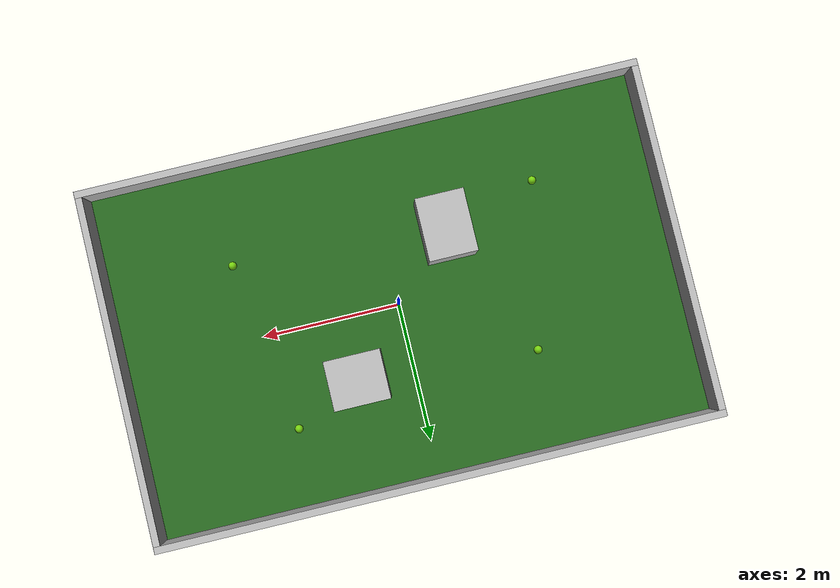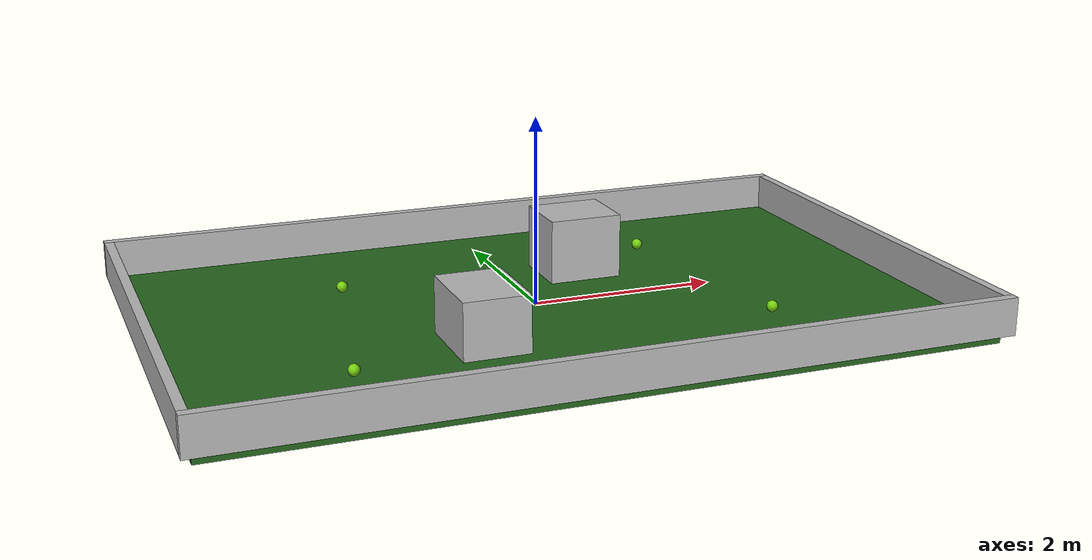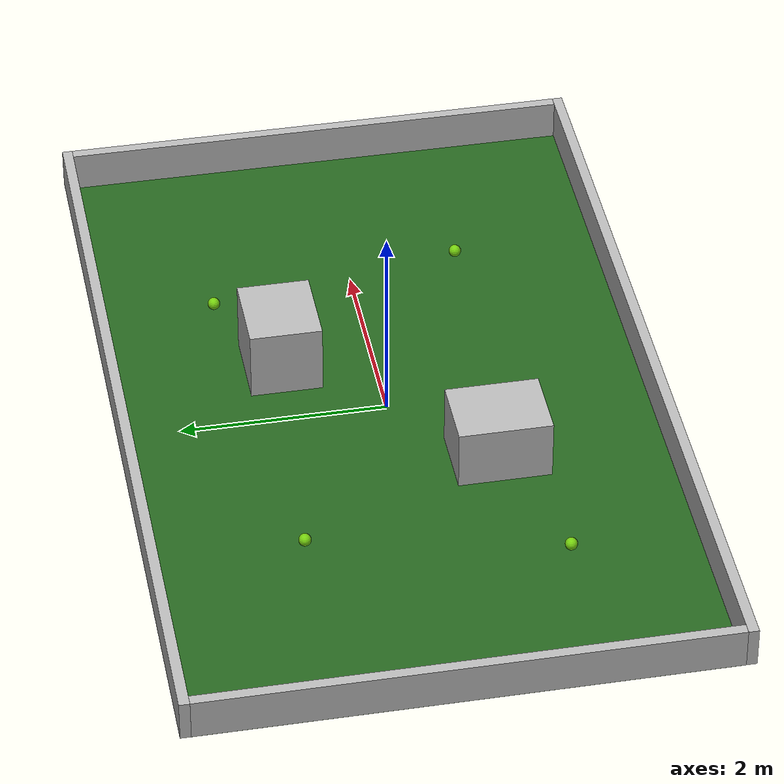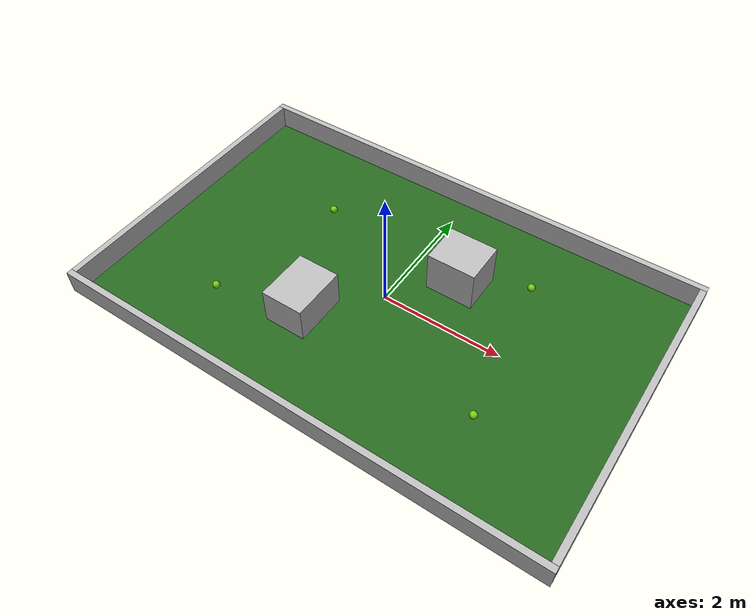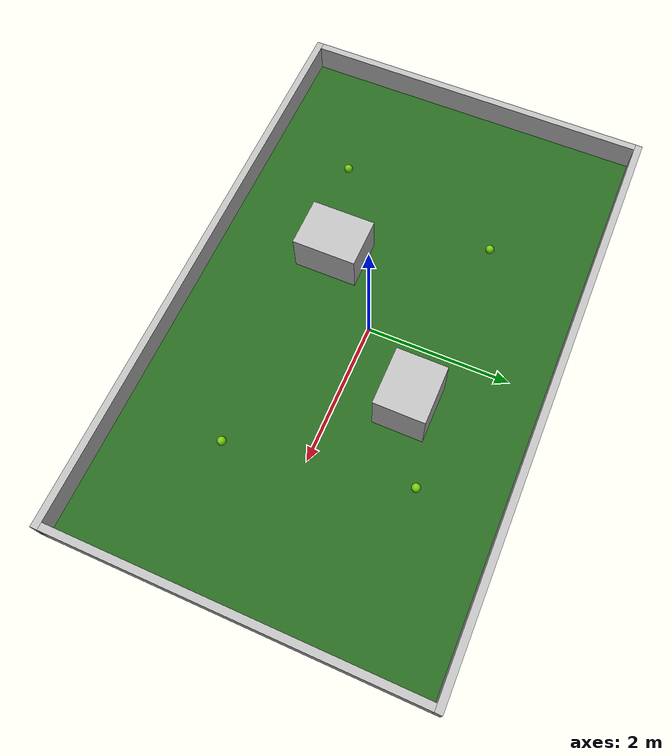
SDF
<?xml version="1.0"?>
<sdf version="1.7">
  <world name="tennis_court">

    <gravity>0 0 -9.81</gravity>

    <physics name="default_physics" type="ode">
      <max_step_size>0.001</max_step_size>
      <real_time_factor>1.0</real_time_factor>
      <real_time_update_rate>1000</real_time_update_rate>
    </physics>

    <plugin filename="gz-sim-physics-system" name="gz::sim::systems::Physics"/>
    <plugin filename="gz-sim-user-commands-system" name="gz::sim::systems::UserCommands"/>
    <plugin filename="gz-sim-scene-broadcaster-system" name="gz::sim::systems::SceneBroadcaster"/>
    <plugin filename="gz-sim-sensors-system" name="gz::sim::systems::Sensors">
      <render_engine>ogre2</render_engine>
    </plugin>

    <light type="directional" name="sun">
      <cast_shadows>true</cast_shadows>
      <pose>0 0 8 0 0 0</pose>
      <diffuse>0.8 0.8 0.8 1</diffuse>
      <specular>0.2 0.2 0.2 1</specular>
      <direction>-0.4 0.1 -0.9</direction>
    </light>

    <model name="court_floor">
      <static>true</static>
      <pose>0 0 -0.05 0 0 0</pose>
      <link name="link">
        <collision name="collision">
          <geometry><box><size>8.0 5.0 0.10</size></box></geometry>
        </collision>
        <visual name="visual">
          <geometry><box><size>8.0 5.0 0.10</size></box></geometry>
          <material>
            <ambient>0.15 0.40 0.12 1</ambient>
            <diffuse>0.15 0.40 0.12 1</diffuse>
          </material>
        </visual>
      </link>
    </model>

    <model name="wall_north">
      <static>true</static>
      <pose>0 2.55 0.20 0 0 0</pose>
      <link name="link">
        <collision name="collision"><geometry><box><size>8.2 0.10 0.40</size></box></geometry></collision>
        <visual name="visual"><geometry><box><size>8.2 0.10 0.40</size></box></geometry></visual>
      </link>
    </model>

    <model name="wall_south">
      <static>true</static>
      <pose>0 -2.55 0.20 0 0 0</pose>
      <link name="link">
        <collision name="collision"><geometry><box><size>8.2 0.10 0.40</size></box></geometry></collision>
        <visual name="visual"><geometry><box><size>8.2 0.10 0.40</size></box></geometry></visual>
      </link>
    </model>

    <model name="wall_east">
      <static>true</static>
      <pose>4.05 0 0.20 0 0 0</pose>
      <link name="link">
        <collision name="collision"><geometry><box><size>0.10 5.0 0.40</size></box></geometry></collision>
        <visual name="visual"><geometry><box><size>0.10 5.0 0.40</size></box></geometry></visual>
      </link>
    </model>

    <model name="wall_west">
      <static>true</static>
      <pose>-4.05 0 0.20 0 0 0</pose>
      <link name="link">
        <collision name="collision"><geometry><box><size>0.10 5.0 0.40</size></box></geometry></collision>
        <visual name="visual"><geometry><box><size>0.10 5.0 0.40</size></box></geometry></visual>
      </link>
    </model>

    <model name="obstacle_1">
      <static>true</static>
      <pose>0.8 0.9 0.35 0 0 0</pose>
      <link name="link">
        <collision name="collision"><geometry><box><size>0.8 0.7 0.70</size></box></geometry></collision>
        <visual name="visual"><geometry><box><size>0.8 0.7 0.70</size></box></geometry></visual>
      </link>
    </model>

    <model name="obstacle_2">
      <static>true</static>
      <pose>-0.9 -0.9 0.30 0 0 0</pose>
      <link name="link">
        <collision name="collision"><geometry><box><size>0.7 0.9 0.60</size></box></geometry></collision>
        <visual name="visual"><geometry><box><size>0.7 0.9 0.60</size></box></geometry></visual>
      </link>
    </model>

    <!-- Targets: visual-only so they don't become navigation obstacles. -->
    <model name="ball_1">
      <static>true</static><pose>1.8 1.4 0.06 0 0 0</pose>
      <link name="link"><visual name="visual">
        <geometry><sphere><radius>0.06</radius></sphere></geometry>
        <material><ambient>0.45 0.80 0.05 1</ambient><diffuse>0.45 0.80 0.05 1</diffuse></material>
      </visual></link>
    </model>

    <model name="ball_2">
      <static>true</static><pose>2.2 -1.1 0.06 0 0 0</pose>
      <link name="link"><visual name="visual">
        <geometry><sphere><radius>0.06</radius></sphere></geometry>
        <material><ambient>0.45 0.80 0.05 1</ambient><diffuse>0.45 0.80 0.05 1</diffuse></material>
      </visual></link>
    </model>

    <model name="ball_3">
      <static>true</static><pose>-1.8 1.1 0.06 0 0 0</pose>
      <link name="link"><visual name="visual">
        <geometry><sphere><radius>0.06</radius></sphere></geometry>
        <material><ambient>0.45 0.80 0.05 1</ambient><diffuse>0.45 0.80 0.05 1</diffuse></material>
      </visual></link>
    </model>

    <model name="ball_4">
      <static>true</static><pose>-2.3 -1.3 0.06 0 0 0</pose>
      <link name="link"><visual name="visual">
        <geometry><sphere><radius>0.06</radius></sphere></geometry>
        <material><ambient>0.45 0.80 0.05 1</ambient><diffuse>0.45 0.80 0.05 1</diffuse></material>
      </visual></link>
    </model>

  </world>
</sdf>
